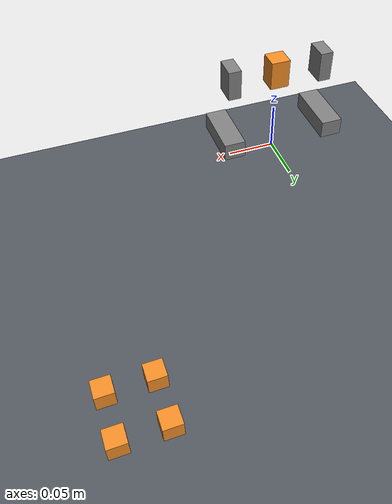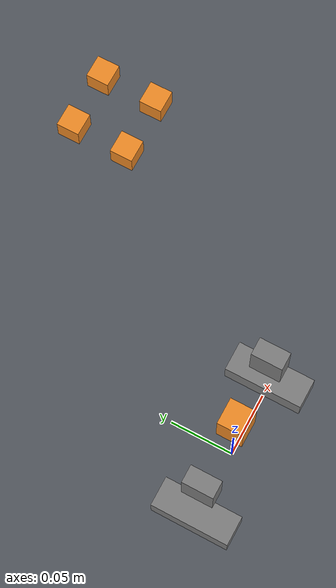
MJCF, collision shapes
<mujoco model="litegrip_scene">
  <include file="litegrip.xml" />

  <asset>
    <material name="mat_floor" rgba="0.32 0.34 0.37 1" />
    <material name="mat_object" rgba="0.95 0.55 0.15 1" />
  </asset>

  <worldbody>
    <geom name="floor" type="plane" pos="0 0 -0.08" size="0.6 0.6 0.01"
          material="mat_floor" contype="1" conaffinity="1"
          condim="3" friction="0.8 0.02 0.0001" />

    <light name="light1" pos="0.4 0.4 0.6" directional="true" />
    <light name="light2" pos="-0.4 -0.4 0.4" directional="true" />

    <!-- 工件：20×20×30 mm，质心在夹持面中心 z=0.096735。裸方块密度 1000 kg/m³
         → 质量 12 g，重量 0.118 N，远小于夹持摩擦所能提供的上限。 -->
    <body name="object" pos="0 0 0.096735">
      <freejoint name="object_free" />
      <geom name="object_geom" type="box" size="0.010 0.010 0.015"
            material="mat_object" contype="1" conaffinity="1"
            condim="4" friction="0.7 0.02 0.0001"
            solimp="0.98 0.999 0.001" solref="0.002 1" />
    </body>

    <!-- 备用工件槽。20 mm 立方体，密度与水同为 1000 kg/m³ → 8 g。
         停放在地板上（z = -0.08 + 0.01）的一排 2×2，离夹爪够远。
         接触参数与上面的工件逐字相同，好让放进去的工件表现一致。 -->
    <body name="spawn_box_0" pos="0.20 0.20 -0.07">
      <freejoint name="spawn_box_0_free" />
      <geom name="spawn_box_0_geom" type="box" size="0.010 0.010 0.010"
            material="mat_object" contype="1" conaffinity="1"
            condim="4" friction="0.7 0.02 0.0001"
            solimp="0.98 0.999 0.001" solref="0.002 1" />
    </body>
    <body name="spawn_box_1" pos="0.25 0.20 -0.07">
      <freejoint name="spawn_box_1_free" />
      <geom name="spawn_box_1_geom" type="box" size="0.010 0.010 0.010"
            material="mat_object" contype="1" conaffinity="1"
            condim="4" friction="0.7 0.02 0.0001"
            solimp="0.98 0.999 0.001" solref="0.002 1" />
    </body>
    <body name="spawn_box_2" pos="0.20 0.25 -0.07">
      <freejoint name="spawn_box_2_free" />
      <geom name="spawn_box_2_geom" type="box" size="0.010 0.010 0.010"
            material="mat_object" contype="1" conaffinity="1"
            condim="4" friction="0.7 0.02 0.0001"
            solimp="0.98 0.999 0.001" solref="0.002 1" />
    </body>
    <body name="spawn_box_3" pos="0.25 0.25 -0.07">
      <freejoint name="spawn_box_3_free" />
      <geom name="spawn_box_3_geom" type="box" size="0.010 0.010 0.010"
            material="mat_object" contype="1" conaffinity="1"
            condim="4" friction="0.7 0.02 0.0001"
            solimp="0.98 0.999 0.001" solref="0.002 1" />
    </body>
  </worldbody>

  <!-- 供料夹具。默认 active；例程用 release_fixture() 把它关掉。
       省略 body2 即焊到世界系。weld 的 solref 取默认（很硬）。 -->
  <equality>
    <weld name="fixture" body1="object" active="true" />
  </equality>

  <keyframe>
    <!-- 指爪张开、工件由夹具托在两指之间：这就是夹具工位的初始状态。

         qpos 的顺序 = 两个指关节 → 工件的自由关节 → 四个槽位的自由关节。
         四个槽位那 28 个数**必须写出来**：漏写会被补零，等于把它们放到世界
         原点，也就是夹爪底座里面（见文件头的说明）。 -->
    <key name="fixture" qpos="0.00001 0.00001
                                0 0 0.096735 1 0 0 0
                                0.20 0.20 -0.07 1 0 0 0
                                0.25 0.20 -0.07 1 0 0 0
                                0.20 0.25 -0.07 1 0 0 0
                                0.25 0.25 -0.07 1 0 0 0" />
  </keyframe>
</mujoco>

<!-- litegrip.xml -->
<mujoco model="litegrip">
  <compiler angle="radian" eulerseq="XYZ" autolimits="true" />

  <option timestep="0.001" gravity="0 0 -9.81" integrator="implicitfast" cone="elliptic" />

  <default>
    <joint type="slide" limited="true" damping="0.05" frictionloss="0.02" armature="0.85" />
    <geom contype="1" conaffinity="1" condim="4"
          solimp="0.98 0.999 0.001" solref="0.002 1"
          friction="0.9 0.02 0.0001" />
    <!-- gear=10 让 data.ctrl 的数值就等于 SDK 的 tau(Nm)；见下方 actuator 段。 -->
    <motor ctrllimited="true" forcelimited="true" gear="10" />
  </default>

  <asset>
    <mesh name="base_link" file="meshes/base_link.STL" />
    <mesh name="finger_right_mesh" file="meshes/gripper_slider_link1.STL" />
    <mesh name="finger_left_mesh" file="meshes/gripper_slider_link2.STL" />
    <material name="mat_base" rgba="0.898 0.918 0.929 1" />
    <material name="mat_finger" rgba="0.98 0.98 0.98 1" />
  </asset>

  <worldbody>
    <!-- 本体：无关节 = 焊接在世界坐标系，0 自由度，无约束开销。 -->
    <body name="base_link">
      <!-- 视觉网格；不计碰撞（见文件头说明）。 -->
      <geom name="base_vis" type="mesh" mesh="base_link" material="mat_base"
            contype="0" conaffinity="0" />

      <body name="finger_right" pos="-0.067 0.0010833 0.034083">
        <joint name="gripper_slide_joint_right" axis="1 0 0" range="0 0.042726" />
        <geom name="finger_right_vis" type="mesh" mesh="finger_right_mesh"
              material="mat_finger" contype="0" conaffinity="0" />
        <!-- 滑座：STL 该区域 x∈[-0.00095,0.02195] y∈[-0.0315833,0.0294167] z∈[-0.0135833,0.005]
             group=3：碰撞代理不该出现在画面里，理由见文件头「碰撞体放在第 3 组」。 -->
        <geom name="finger_right_col_body" type="box" group="3"
              pos="0.0105000 -0.0010833 -0.00429165"
              size="0.0114500 0.0305000 0.00929165" />
        <!--
          夹持面：+x 面精确落在网格 x=0.0235 → 世界 x=-0.0435。
          y 中心 -0.0010833 恰好抵消关节原点的 y 偏移，故在 base_link 系中
          该面关于 y=0 对称。z 覆盖网格上 x>=0.0230 的全部顶点（含 0.4 mm 内缩）。
        -->
        <geom name="finger_right_col_pad" type="box" group="3"
              pos="0.0167500 -0.0010833 0.0626520"
              size="0.0067500 0.0119595 0.0157940" />
      </body>

      <!-- 左指是右指的 x/y 双取反（绕 z 轴 180°），不是单纯的 x 镜像。
           两个 STL 内容不同（md5 27a7b032… vs 34d85dd2…），不可复用同一个文件。 -->
      <body name="finger_left" pos="0.067 -0.0010833 0.034083">
        <joint name="gripper_slide_joint_left" axis="-1 0 0" range="0 0.042726" />
        <geom name="finger_left_vis" type="mesh" mesh="finger_left_mesh"
              material="mat_finger" contype="0" conaffinity="0" />
        <geom name="finger_left_col_body" type="box" group="3"
              pos="-0.0105000 0.0010833 -0.00429165"
              size="0.0114500 0.0305000 0.00929165" />
        <geom name="finger_left_col_pad" type="box" group="3"
              pos="-0.0167500 0.0010833 0.0626520"
              size="0.0067500 0.0119595 0.0157940" />
      </body>
    </body>
  </worldbody>

  <actuator>
    <motor name="motor_right" joint="gripper_slide_joint_right"
           ctrlrange="-10 10" forcerange="-100 100" />
    <motor name="motor_left" joint="gripper_slide_joint_left"
           ctrlrange="-10 10" forcerange="-100 100" />
  </actuator>

  <equality>
    <joint name="finger_coupling" joint1="gripper_slide_joint_right"
           joint2="gripper_slide_joint_left" polycoef="0 1 0 0 0" />
  </equality>

  <statistic center="0 0 0.04" extent="0.15" />

  <!--
    home = closed，与 SDK 的 home()／pos_closed_rad 语义一致。
    张开位刻意偏离限位 1e-5：正好坐在 range 边界上会触发限位约束，其 solref
    参考加速度项会注入一个很小的虚假力。
  -->
  <keyframe>
    <key name="open" qpos="0.00001 0.00001" />
    <key name="closed" qpos="0.042726 0.042726" />
    <key name="home" qpos="0.042726 0.042726" />
  </keyframe>
</mujoco>
